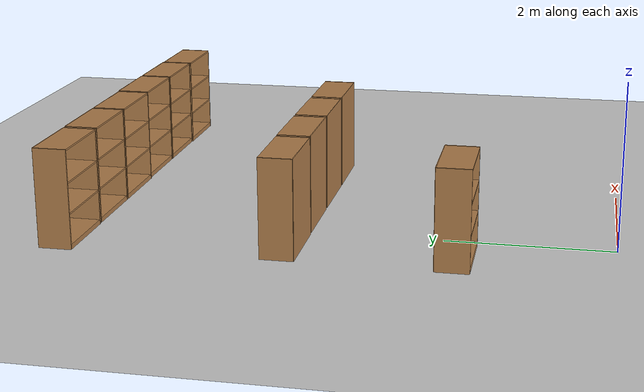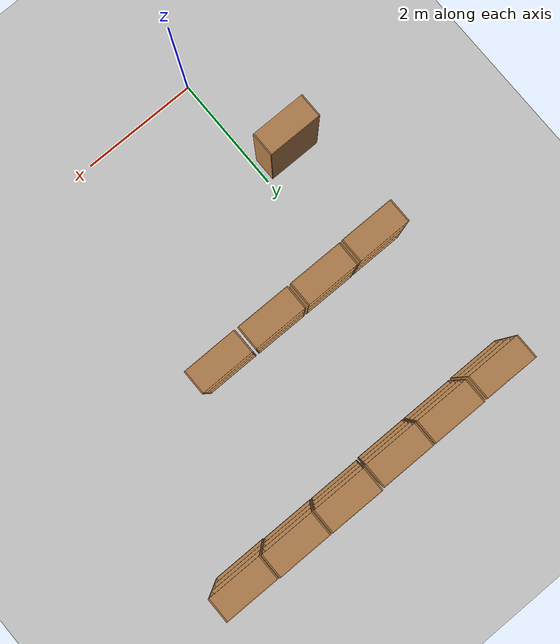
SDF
<sdf version="1.6">
 <world name="default">
  <model name="ground_plane">
   <static>1</static>
   <link name="link">
    <collision name="collision">
     <geometry><plane><normal>0 0 1</normal><size>100 100</size></plane></geometry>
     <surface><friction><ode><mu>100</mu><mu2>50</mu2></ode></friction></surface>
    </collision>
    <visual name="visual">
     <cast_shadows>0</cast_shadows>
     <geometry><plane><normal>0 0 1</normal><size>100 100</size></plane></geometry>
     <material>
      <script><uri>file://media/materials/scripts/gazebo.material</uri><name>Gazebo/Grey</name></script>
     </material>
    </visual>
   </link>
  </model>
  <model name="bookshelf">
   <static>1</static>
   <link name="link">
    <inertial><mass>1</mass></inertial>
    <collision name="back">
     <pose>0 0.005 0.6 0 -0 0</pose>
     <geometry><box><size>0.9 0.01 1.2</size></box></geometry>
    </collision>
    <visual name="visual1">
     <pose>0 0.005 0.6 0 -0 0</pose>
     <geometry><box><size>0.9 0.01 1.2</size></box></geometry>
     <material>
      <script><uri>file://media/materials/scripts/gazebo.material</uri><name>Gazebo/Wood</name></script>
     </material>
    </visual>
    <collision name="left_side">
     <pose>0.45 -0.195 0.6 0 -0 0</pose>
     <geometry><box><size>0.02 0.4 1.2</size></box></geometry>
    </collision>
    <visual name="visual2">
     <pose>0.45 -0.195 0.6 0 -0 0</pose>
     <geometry><box><size>0.02 0.4 1.2</size></box></geometry>
     <material>
      <script><uri>file://media/materials/scripts/gazebo.material</uri><name>Gazebo/Wood</name></script>
     </material>
    </visual>
    <collision name="right_side">
     <pose>-0.45 -0.195 0.6 0 -0 0</pose>
     <geometry><box><size>0.02 0.4 1.2</size></box></geometry>
    </collision>
    <visual name="visual3">
     <pose>-0.45 -0.195 0.6 0 -0 0</pose>
     <geometry><box><size>0.02 0.4 1.2</size></box></geometry>
     <material>
      <script><uri>file://media/materials/scripts/gazebo.material</uri><name>Gazebo/Wood</name></script>
     </material>
    </visual>
    <collision name="bottom">
     <pose>0 -0.195 0.03 0 -0 0</pose>
     <geometry><box><size>0.88 0.4 0.06</size></box></geometry>
    </collision>
    <visual name="visual4">
     <pose>0 -0.195 0.03 0 -0 0</pose>
     <geometry><box><size>0.88 0.4 0.06</size></box></geometry>
     <material>
      <script><uri>file://media/materials/scripts/gazebo.material</uri><name>Gazebo/Wood</name></script>
     </material>
    </visual>
    <collision name="top">
     <pose>0 -0.195 1.19 0 -0 0</pose>
     <geometry><box><size>0.88 0.4 0.02</size></box></geometry>
    </collision>
    <visual name="visual5">
     <pose>0 -0.195 1.19 0 -0 0</pose>
     <geometry><box><size>0.88 0.4 0.02</size></box></geometry>
     <material>
      <script><uri>file://media/materials/scripts/gazebo.material</uri><name>Gazebo/Wood</name></script>
     </material>
    </visual>
    <collision name="low_shelf">
     <pose>0 -0.195 0.43 0 -0 0</pose>
     <geometry><box><size>0.88 0.4 0.02</size></box></geometry>
    </collision>
    <visual name="visual6">
     <pose>0 -0.195 0.43 0 -0 0</pose>
     <geometry><box><size>0.88 0.4 0.02</size></box></geometry>
     <material>
      <script><uri>file://media/materials/scripts/gazebo.material</uri><name>Gazebo/Wood</name></script>
     </material>
    </visual>
    <collision name="high_shelf">
     <pose>0 -0.195 0.8 0 -0 0</pose>
     <geometry><box><size>0.88 0.4 0.02</size></box></geometry>
    </collision>
    <visual name="visual7">
     <pose>0 -0.195 0.8 0 -0 0</pose>
     <geometry><box><size>0.88 0.4 0.02</size></box></geometry>
     <material>
      <script><uri>file://media/materials/scripts/gazebo.material</uri><name>Gazebo/Wood</name></script>
     </material>
    </visual>
   </link>
   <pose>4.05709 6.59191 0 0 -0 0</pose>
  </model>
  <model name="bookshelf_0">
   <static>1</static>
   <link name="link">
    <inertial><mass>1</mass></inertial>
    <collision name="back">
     <pose>0 0.005 0.6 0 -0 0</pose>
     <geometry><box><size>0.9 0.01 1.2</size></box></geometry>
    </collision>
    <visual name="visual1">
     <pose>0 0.005 0.6 0 -0 0</pose>
     <geometry><box><size>0.9 0.01 1.2</size></box></geometry>
     <material>
      <script><uri>file://media/materials/scripts/gazebo.material</uri><name>Gazebo/Wood</name></script>
     </material>
    </visual>
    <collision name="left_side">
     <pose>0.45 -0.195 0.6 0 -0 0</pose>
     <geometry><box><size>0.02 0.4 1.2</size></box></geometry>
    </collision>
    <visual name="visual2">
     <pose>0.45 -0.195 0.6 0 -0 0</pose>
     <geometry><box><size>0.02 0.4 1.2</size></box></geometry>
     <material>
      <script><uri>file://media/materials/scripts/gazebo.material</uri><name>Gazebo/Wood</name></script>
     </material>
    </visual>
    <collision name="right_side">
     <pose>-0.45 -0.195 0.6 0 -0 0</pose>
     <geometry><box><size>0.02 0.4 1.2</size></box></geometry>
    </collision>
    <visual name="visual3">
     <pose>-0.45 -0.195 0.6 0 -0 0</pose>
     <geometry><box><size>0.02 0.4 1.2</size></box></geometry>
     <material>
      <script><uri>file://media/materials/scripts/gazebo.material</uri><name>Gazebo/Wood</name></script>
     </material>
    </visual>
    <collision name="bottom">
     <pose>0 -0.195 0.03 0 -0 0</pose>
     <geometry><box><size>0.88 0.4 0.06</size></box></geometry>
    </collision>
    <visual name="visual4">
     <pose>0 -0.195 0.03 0 -0 0</pose>
     <geometry><box><size>0.88 0.4 0.06</size></box></geometry>
     <material>
      <script><uri>file://media/materials/scripts/gazebo.material</uri><name>Gazebo/Wood</name></script>
     </material>
    </visual>
    <collision name="top">
     <pose>0 -0.195 1.19 0 -0 0</pose>
     <geometry><box><size>0.88 0.4 0.02</size></box></geometry>
    </collision>
    <visual name="visual5">
     <pose>0 -0.195 1.19 0 -0 0</pose>
     <geometry><box><size>0.88 0.4 0.02</size></box></geometry>
     <material>
      <script><uri>file://media/materials/scripts/gazebo.material</uri><name>Gazebo/Wood</name></script>
     </material>
    </visual>
    <collision name="low_shelf">
     <pose>0 -0.195 0.43 0 -0 0</pose>
     <geometry><box><size>0.88 0.4 0.02</size></box></geometry>
    </collision>
    <visual name="visual6">
     <pose>0 -0.195 0.43 0 -0 0</pose>
     <geometry><box><size>0.88 0.4 0.02</size></box></geometry>
     <material>
      <script><uri>file://media/materials/scripts/gazebo.material</uri><name>Gazebo/Wood</name></script>
     </material>
    </visual>
    <collision name="high_shelf">
     <pose>0 -0.195 0.8 0 -0 0</pose>
     <geometry><box><size>0.88 0.4 0.02</size></box></geometry>
    </collision>
    <visual name="visual7">
     <pose>0 -0.195 0.8 0 -0 0</pose>
     <geometry><box><size>0.88 0.4 0.02</size></box></geometry>
     <material>
      <script><uri>file://media/materials/scripts/gazebo.material</uri><name>Gazebo/Wood</name></script>
     </material>
    </visual>
   </link>
   <pose>3.12879 6.60173 0 0 -0 0</pose>
  </model>
  <model name="bookshelf_1">
   <static>1</static>
   <link name="link">
    <inertial><mass>1</mass></inertial>
    <collision name="back">
     <pose>0 0.005 0.6 0 -0 0</pose>
     <geometry><box><size>0.9 0.01 1.2</size></box></geometry>
    </collision>
    <visual name="visual1">
     <pose>0 0.005 0.6 0 -0 0</pose>
     <geometry><box><size>0.9 0.01 1.2</size></box></geometry>
     <material>
      <script><uri>file://media/materials/scripts/gazebo.material</uri><name>Gazebo/Wood</name></script>
     </material>
    </visual>
    <collision name="left_side">
     <pose>0.45 -0.195 0.6 0 -0 0</pose>
     <geometry><box><size>0.02 0.4 1.2</size></box></geometry>
    </collision>
    <visual name="visual2">
     <pose>0.45 -0.195 0.6 0 -0 0</pose>
     <geometry><box><size>0.02 0.4 1.2</size></box></geometry>
     <material>
      <script><uri>file://media/materials/scripts/gazebo.material</uri><name>Gazebo/Wood</name></script>
     </material>
    </visual>
    <collision name="right_side">
     <pose>-0.45 -0.195 0.6 0 -0 0</pose>
     <geometry><box><size>0.02 0.4 1.2</size></box></geometry>
    </collision>
    <visual name="visual3">
     <pose>-0.45 -0.195 0.6 0 -0 0</pose>
     <geometry><box><size>0.02 0.4 1.2</size></box></geometry>
     <material>
      <script><uri>file://media/materials/scripts/gazebo.material</uri><name>Gazebo/Wood</name></script>
     </material>
    </visual>
    <collision name="bottom">
     <pose>0 -0.195 0.03 0 -0 0</pose>
     <geometry><box><size>0.88 0.4 0.06</size></box></geometry>
    </collision>
    <visual name="visual4">
     <pose>0 -0.195 0.03 0 -0 0</pose>
     <geometry><box><size>0.88 0.4 0.06</size></box></geometry>
     <material>
      <script><uri>file://media/materials/scripts/gazebo.material</uri><name>Gazebo/Wood</name></script>
     </material>
    </visual>
    <collision name="top">
     <pose>0 -0.195 1.19 0 -0 0</pose>
     <geometry><box><size>0.88 0.4 0.02</size></box></geometry>
    </collision>
    <visual name="visual5">
     <pose>0 -0.195 1.19 0 -0 0</pose>
     <geometry><box><size>0.88 0.4 0.02</size></box></geometry>
     <material>
      <script><uri>file://media/materials/scripts/gazebo.material</uri><name>Gazebo/Wood</name></script>
     </material>
    </visual>
    <collision name="low_shelf">
     <pose>0 -0.195 0.43 0 -0 0</pose>
     <geometry><box><size>0.88 0.4 0.02</size></box></geometry>
    </collision>
    <visual name="visual6">
     <pose>0 -0.195 0.43 0 -0 0</pose>
     <geometry><box><size>0.88 0.4 0.02</size></box></geometry>
     <material>
      <script><uri>file://media/materials/scripts/gazebo.material</uri><name>Gazebo/Wood</name></script>
     </material>
    </visual>
    <collision name="high_shelf">
     <pose>0 -0.195 0.8 0 -0 0</pose>
     <geometry><box><size>0.88 0.4 0.02</size></box></geometry>
    </collision>
    <visual name="visual7">
     <pose>0 -0.195 0.8 0 -0 0</pose>
     <geometry><box><size>0.88 0.4 0.02</size></box></geometry>
     <material>
      <script><uri>file://media/materials/scripts/gazebo.material</uri><name>Gazebo/Wood</name></script>
     </material>
    </visual>
   </link>
   <pose>2.19452 6.60359 0 0 -0 0</pose>
  </model>
  <model name="bookshelf_2">
   <static>1</static>
   <link name="link">
    <inertial><mass>1</mass></inertial>
    <collision name="back">
     <pose>0 0.005 0.6 0 -0 0</pose>
     <geometry><box><size>0.9 0.01 1.2</size></box></geometry>
    </collision>
    <visual name="visual1">
     <pose>0 0.005 0.6 0 -0 0</pose>
     <geometry><box><size>0.9 0.01 1.2</size></box></geometry>
     <material>
      <script><uri>file://media/materials/scripts/gazebo.material</uri><name>Gazebo/Wood</name></script>
     </material>
    </visual>
    <collision name="left_side">
     <pose>0.45 -0.195 0.6 0 -0 0</pose>
     <geometry><box><size>0.02 0.4 1.2</size></box></geometry>
    </collision>
    <visual name="visual2">
     <pose>0.45 -0.195 0.6 0 -0 0</pose>
     <geometry><box><size>0.02 0.4 1.2</size></box></geometry>
     <material>
      <script><uri>file://media/materials/scripts/gazebo.material</uri><name>Gazebo/Wood</name></script>
     </material>
    </visual>
    <collision name="right_side">
     <pose>-0.45 -0.195 0.6 0 -0 0</pose>
     <geometry><box><size>0.02 0.4 1.2</size></box></geometry>
    </collision>
    <visual name="visual3">
     <pose>-0.45 -0.195 0.6 0 -0 0</pose>
     <geometry><box><size>0.02 0.4 1.2</size></box></geometry>
     <material>
      <script><uri>file://media/materials/scripts/gazebo.material</uri><name>Gazebo/Wood</name></script>
     </material>
    </visual>
    <collision name="bottom">
     <pose>0 -0.195 0.03 0 -0 0</pose>
     <geometry><box><size>0.88 0.4 0.06</size></box></geometry>
    </collision>
    <visual name="visual4">
     <pose>0 -0.195 0.03 0 -0 0</pose>
     <geometry><box><size>0.88 0.4 0.06</size></box></geometry>
     <material>
      <script><uri>file://media/materials/scripts/gazebo.material</uri><name>Gazebo/Wood</name></script>
     </material>
    </visual>
    <collision name="top">
     <pose>0 -0.195 1.19 0 -0 0</pose>
     <geometry><box><size>0.88 0.4 0.02</size></box></geometry>
    </collision>
    <visual name="visual5">
     <pose>0 -0.195 1.19 0 -0 0</pose>
     <geometry><box><size>0.88 0.4 0.02</size></box></geometry>
     <material>
      <script><uri>file://media/materials/scripts/gazebo.material</uri><name>Gazebo/Wood</name></script>
     </material>
    </visual>
    <collision name="low_shelf">
     <pose>0 -0.195 0.43 0 -0 0</pose>
     <geometry><box><size>0.88 0.4 0.02</size></box></geometry>
    </collision>
    <visual name="visual6">
     <pose>0 -0.195 0.43 0 -0 0</pose>
     <geometry><box><size>0.88 0.4 0.02</size></box></geometry>
     <material>
      <script><uri>file://media/materials/scripts/gazebo.material</uri><name>Gazebo/Wood</name></script>
     </material>
    </visual>
    <collision name="high_shelf">
     <pose>0 -0.195 0.8 0 -0 0</pose>
     <geometry><box><size>0.88 0.4 0.02</size></box></geometry>
    </collision>
    <visual name="visual7">
     <pose>0 -0.195 0.8 0 -0 0</pose>
     <geometry><box><size>0.88 0.4 0.02</size></box></geometry>
     <material>
      <script><uri>file://media/materials/scripts/gazebo.material</uri><name>Gazebo/Wood</name></script>
     </material>
    </visual>
   </link>
   <pose>1.25194 6.58848 0 0 -0 0</pose>
  </model>
  <model name="bookshelf_3">
   <static>1</static>
   <link name="link">
    <inertial><mass>1</mass></inertial>
    <collision name="back">
     <pose>0 0.005 0.6 0 -0 0</pose>
     <geometry><box><size>0.9 0.01 1.2</size></box></geometry>
    </collision>
    <visual name="visual1">
     <pose>0 0.005 0.6 0 -0 0</pose>
     <geometry><box><size>0.9 0.01 1.2</size></box></geometry>
     <material>
      <script><uri>file://media/materials/scripts/gazebo.material</uri><name>Gazebo/Wood</name></script>
     </material>
    </visual>
    <collision name="left_side">
     <pose>0.45 -0.195 0.6 0 -0 0</pose>
     <geometry><box><size>0.02 0.4 1.2</size></box></geometry>
    </collision>
    <visual name="visual2">
     <pose>0.45 -0.195 0.6 0 -0 0</pose>
     <geometry><box><size>0.02 0.4 1.2</size></box></geometry>
     <material>
      <script><uri>file://media/materials/scripts/gazebo.material</uri><name>Gazebo/Wood</name></script>
     </material>
    </visual>
    <collision name="right_side">
     <pose>-0.45 -0.195 0.6 0 -0 0</pose>
     <geometry><box><size>0.02 0.4 1.2</size></box></geometry>
    </collision>
    <visual name="visual3">
     <pose>-0.45 -0.195 0.6 0 -0 0</pose>
     <geometry><box><size>0.02 0.4 1.2</size></box></geometry>
     <material>
      <script><uri>file://media/materials/scripts/gazebo.material</uri><name>Gazebo/Wood</name></script>
     </material>
    </visual>
    <collision name="bottom">
     <pose>0 -0.195 0.03 0 -0 0</pose>
     <geometry><box><size>0.88 0.4 0.06</size></box></geometry>
    </collision>
    <visual name="visual4">
     <pose>0 -0.195 0.03 0 -0 0</pose>
     <geometry><box><size>0.88 0.4 0.06</size></box></geometry>
     <material>
      <script><uri>file://media/materials/scripts/gazebo.material</uri><name>Gazebo/Wood</name></script>
     </material>
    </visual>
    <collision name="top">
     <pose>0 -0.195 1.19 0 -0 0</pose>
     <geometry><box><size>0.88 0.4 0.02</size></box></geometry>
    </collision>
    <visual name="visual5">
     <pose>0 -0.195 1.19 0 -0 0</pose>
     <geometry><box><size>0.88 0.4 0.02</size></box></geometry>
     <material>
      <script><uri>file://media/materials/scripts/gazebo.material</uri><name>Gazebo/Wood</name></script>
     </material>
    </visual>
    <collision name="low_shelf">
     <pose>0 -0.195 0.43 0 -0 0</pose>
     <geometry><box><size>0.88 0.4 0.02</size></box></geometry>
    </collision>
    <visual name="visual6">
     <pose>0 -0.195 0.43 0 -0 0</pose>
     <geometry><box><size>0.88 0.4 0.02</size></box></geometry>
     <material>
      <script><uri>file://media/materials/scripts/gazebo.material</uri><name>Gazebo/Wood</name></script>
     </material>
    </visual>
    <collision name="high_shelf">
     <pose>0 -0.195 0.8 0 -0 0</pose>
     <geometry><box><size>0.88 0.4 0.02</size></box></geometry>
    </collision>
    <visual name="visual7">
     <pose>0 -0.195 0.8 0 -0 0</pose>
     <geometry><box><size>0.88 0.4 0.02</size></box></geometry>
     <material>
      <script><uri>file://media/materials/scripts/gazebo.material</uri><name>Gazebo/Wood</name></script>
     </material>
    </visual>
   </link>
   <pose>0.319104 6.58896 0 0 -0 0</pose>
  </model>
  <model name="bookshelf_4">
   <static>1</static>
   <link name="link">
    <inertial><mass>1</mass></inertial>
    <collision name="back">
     <pose>0 0.005 0.6 0 -0 0</pose>
     <geometry><box><size>0.9 0.01 1.2</size></box></geometry>
    </collision>
    <visual name="visual1">
     <pose>0 0.005 0.6 0 -0 0</pose>
     <geometry><box><size>0.9 0.01 1.2</size></box></geometry>
     <material>
      <script><uri>file://media/materials/scripts/gazebo.material</uri><name>Gazebo/Wood</name></script>
     </material>
    </visual>
    <collision name="left_side">
     <pose>0.45 -0.195 0.6 0 -0 0</pose>
     <geometry><box><size>0.02 0.4 1.2</size></box></geometry>
    </collision>
    <visual name="visual2">
     <pose>0.45 -0.195 0.6 0 -0 0</pose>
     <geometry><box><size>0.02 0.4 1.2</size></box></geometry>
     <material>
      <script><uri>file://media/materials/scripts/gazebo.material</uri><name>Gazebo/Wood</name></script>
     </material>
    </visual>
    <collision name="right_side">
     <pose>-0.45 -0.195 0.6 0 -0 0</pose>
     <geometry><box><size>0.02 0.4 1.2</size></box></geometry>
    </collision>
    <visual name="visual3">
     <pose>-0.45 -0.195 0.6 0 -0 0</pose>
     <geometry><box><size>0.02 0.4 1.2</size></box></geometry>
     <material>
      <script><uri>file://media/materials/scripts/gazebo.material</uri><name>Gazebo/Wood</name></script>
     </material>
    </visual>
    <collision name="bottom">
     <pose>0 -0.195 0.03 0 -0 0</pose>
     <geometry><box><size>0.88 0.4 0.06</size></box></geometry>
    </collision>
    <visual name="visual4">
     <pose>0 -0.195 0.03 0 -0 0</pose>
     <geometry><box><size>0.88 0.4 0.06</size></box></geometry>
     <material>
      <script><uri>file://media/materials/scripts/gazebo.material</uri><name>Gazebo/Wood</name></script>
     </material>
    </visual>
    <collision name="top">
     <pose>0 -0.195 1.19 0 -0 0</pose>
     <geometry><box><size>0.88 0.4 0.02</size></box></geometry>
    </collision>
    <visual name="visual5">
     <pose>0 -0.195 1.19 0 -0 0</pose>
     <geometry><box><size>0.88 0.4 0.02</size></box></geometry>
     <material>
      <script><uri>file://media/materials/scripts/gazebo.material</uri><name>Gazebo/Wood</name></script>
     </material>
    </visual>
    <collision name="low_shelf">
     <pose>0 -0.195 0.43 0 -0 0</pose>
     <geometry><box><size>0.88 0.4 0.02</size></box></geometry>
    </collision>
    <visual name="visual6">
     <pose>0 -0.195 0.43 0 -0 0</pose>
     <geometry><box><size>0.88 0.4 0.02</size></box></geometry>
     <material>
      <script><uri>file://media/materials/scripts/gazebo.material</uri><name>Gazebo/Wood</name></script>
     </material>
    </visual>
    <collision name="high_shelf">
     <pose>0 -0.195 0.8 0 -0 0</pose>
     <geometry><box><size>0.88 0.4 0.02</size></box></geometry>
    </collision>
    <visual name="visual7">
     <pose>0 -0.195 0.8 0 -0 0</pose>
     <geometry><box><size>0.88 0.4 0.02</size></box></geometry>
     <material>
      <script><uri>file://media/materials/scripts/gazebo.material</uri><name>Gazebo/Wood</name></script>
     </material>
    </visual>
   </link>
   <pose>-0.528232 3.59496 0 0 0 -3.13715</pose>
  </model>
  <model name="bookshelf_5">
   <static>1</static>
   <link name="link">
    <inertial><mass>1</mass></inertial>
    <collision name="back">
     <pose>0 0.005 0.6 0 -0 0</pose>
     <geometry><box><size>0.9 0.01 1.2</size></box></geometry>
    </collision>
    <visual name="visual1">
     <pose>0 0.005 0.6 0 -0 0</pose>
     <geometry><box><size>0.9 0.01 1.2</size></box></geometry>
     <material>
      <script><uri>file://media/materials/scripts/gazebo.material</uri><name>Gazebo/Wood</name></script>
     </material>
    </visual>
    <collision name="left_side">
     <pose>0.45 -0.195 0.6 0 -0 0</pose>
     <geometry><box><size>0.02 0.4 1.2</size></box></geometry>
    </collision>
    <visual name="visual2">
     <pose>0.45 -0.195 0.6 0 -0 0</pose>
     <geometry><box><size>0.02 0.4 1.2</size></box></geometry>
     <material>
      <script><uri>file://media/materials/scripts/gazebo.material</uri><name>Gazebo/Wood</name></script>
     </material>
    </visual>
    <collision name="right_side">
     <pose>-0.45 -0.195 0.6 0 -0 0</pose>
     <geometry><box><size>0.02 0.4 1.2</size></box></geometry>
    </collision>
    <visual name="visual3">
     <pose>-0.45 -0.195 0.6 0 -0 0</pose>
     <geometry><box><size>0.02 0.4 1.2</size></box></geometry>
     <material>
      <script><uri>file://media/materials/scripts/gazebo.material</uri><name>Gazebo/Wood</name></script>
     </material>
    </visual>
    <collision name="bottom">
     <pose>0 -0.195 0.03 0 -0 0</pose>
     <geometry><box><size>0.88 0.4 0.06</size></box></geometry>
    </collision>
    <visual name="visual4">
     <pose>0 -0.195 0.03 0 -0 0</pose>
     <geometry><box><size>0.88 0.4 0.06</size></box></geometry>
     <material>
      <script><uri>file://media/materials/scripts/gazebo.material</uri><name>Gazebo/Wood</name></script>
     </material>
    </visual>
    <collision name="top">
     <pose>0 -0.195 1.19 0 -0 0</pose>
     <geometry><box><size>0.88 0.4 0.02</size></box></geometry>
    </collision>
    <visual name="visual5">
     <pose>0 -0.195 1.19 0 -0 0</pose>
     <geometry><box><size>0.88 0.4 0.02</size></box></geometry>
     <material>
      <script><uri>file://media/materials/scripts/gazebo.material</uri><name>Gazebo/Wood</name></script>
     </material>
    </visual>
    <collision name="low_shelf">
     <pose>0 -0.195 0.43 0 -0 0</pose>
     <geometry><box><size>0.88 0.4 0.02</size></box></geometry>
    </collision>
    <visual name="visual6">
     <pose>0 -0.195 0.43 0 -0 0</pose>
     <geometry><box><size>0.88 0.4 0.02</size></box></geometry>
     <material>
      <script><uri>file://media/materials/scripts/gazebo.material</uri><name>Gazebo/Wood</name></script>
     </material>
    </visual>
    <collision name="high_shelf">
     <pose>0 -0.195 0.8 0 -0 0</pose>
     <geometry><box><size>0.88 0.4 0.02</size></box></geometry>
    </collision>
    <visual name="visual7">
     <pose>0 -0.195 0.8 0 -0 0</pose>
     <geometry><box><size>0.88 0.4 0.02</size></box></geometry>
     <material>
      <script><uri>file://media/materials/scripts/gazebo.material</uri><name>Gazebo/Wood</name></script>
     </material>
    </visual>
   </link>
   <pose>0.427849 3.60204 0 0 0 -3.14074</pose>
  </model>
  <model name="bookshelf_6">
   <static>1</static>
   <link name="link">
    <inertial><mass>1</mass></inertial>
    <collision name="back">
     <pose>0 0.005 0.6 0 -0 0</pose>
     <geometry><box><size>0.9 0.01 1.2</size></box></geometry>
    </collision>
    <visual name="visual1">
     <pose>0 0.005 0.6 0 -0 0</pose>
     <geometry><box><size>0.9 0.01 1.2</size></box></geometry>
     <material>
      <script><uri>file://media/materials/scripts/gazebo.material</uri><name>Gazebo/Wood</name></script>
     </material>
    </visual>
    <collision name="left_side">
     <pose>0.45 -0.195 0.6 0 -0 0</pose>
     <geometry><box><size>0.02 0.4 1.2</size></box></geometry>
    </collision>
    <visual name="visual2">
     <pose>0.45 -0.195 0.6 0 -0 0</pose>
     <geometry><box><size>0.02 0.4 1.2</size></box></geometry>
     <material>
      <script><uri>file://media/materials/scripts/gazebo.material</uri><name>Gazebo/Wood</name></script>
     </material>
    </visual>
    <collision name="right_side">
     <pose>-0.45 -0.195 0.6 0 -0 0</pose>
     <geometry><box><size>0.02 0.4 1.2</size></box></geometry>
    </collision>
    <visual name="visual3">
     <pose>-0.45 -0.195 0.6 0 -0 0</pose>
     <geometry><box><size>0.02 0.4 1.2</size></box></geometry>
     <material>
      <script><uri>file://media/materials/scripts/gazebo.material</uri><name>Gazebo/Wood</name></script>
     </material>
    </visual>
    <collision name="bottom">
     <pose>0 -0.195 0.03 0 -0 0</pose>
     <geometry><box><size>0.88 0.4 0.06</size></box></geometry>
    </collision>
    <visual name="visual4">
     <pose>0 -0.195 0.03 0 -0 0</pose>
     <geometry><box><size>0.88 0.4 0.06</size></box></geometry>
     <material>
      <script><uri>file://media/materials/scripts/gazebo.material</uri><name>Gazebo/Wood</name></script>
     </material>
    </visual>
    <collision name="top">
     <pose>0 -0.195 1.19 0 -0 0</pose>
     <geometry><box><size>0.88 0.4 0.02</size></box></geometry>
    </collision>
    <visual name="visual5">
     <pose>0 -0.195 1.19 0 -0 0</pose>
     <geometry><box><size>0.88 0.4 0.02</size></box></geometry>
     <material>
      <script><uri>file://media/materials/scripts/gazebo.material</uri><name>Gazebo/Wood</name></script>
     </material>
    </visual>
    <collision name="low_shelf">
     <pose>0 -0.195 0.43 0 -0 0</pose>
     <geometry><box><size>0.88 0.4 0.02</size></box></geometry>
    </collision>
    <visual name="visual6">
     <pose>0 -0.195 0.43 0 -0 0</pose>
     <geometry><box><size>0.88 0.4 0.02</size></box></geometry>
     <material>
      <script><uri>file://media/materials/scripts/gazebo.material</uri><name>Gazebo/Wood</name></script>
     </material>
    </visual>
    <collision name="high_shelf">
     <pose>0 -0.195 0.8 0 -0 0</pose>
     <geometry><box><size>0.88 0.4 0.02</size></box></geometry>
    </collision>
    <visual name="visual7">
     <pose>0 -0.195 0.8 0 -0 0</pose>
     <geometry><box><size>0.88 0.4 0.02</size></box></geometry>
     <material>
      <script><uri>file://media/materials/scripts/gazebo.material</uri><name>Gazebo/Wood</name></script>
     </material>
    </visual>
   </link>
   <pose>1.38749 3.60149 0 0 -0 3.14021</pose>
  </model>
  <model name="bookshelf_7">
   <static>1</static>
   <link name="link">
    <inertial><mass>1</mass></inertial>
    <collision name="back">
     <pose>0 0.005 0.6 0 -0 0</pose>
     <geometry><box><size>0.9 0.01 1.2</size></box></geometry>
    </collision>
    <visual name="visual1">
     <pose>0 0.005 0.6 0 -0 0</pose>
     <geometry><box><size>0.9 0.01 1.2</size></box></geometry>
     <material>
      <script><uri>file://media/materials/scripts/gazebo.material</uri><name>Gazebo/Wood</name></script>
     </material>
    </visual>
    <collision name="left_side">
     <pose>0.45 -0.195 0.6 0 -0 0</pose>
     <geometry><box><size>0.02 0.4 1.2</size></box></geometry>
    </collision>
    <visual name="visual2">
     <pose>0.45 -0.195 0.6 0 -0 0</pose>
     <geometry><box><size>0.02 0.4 1.2</size></box></geometry>
     <material>
      <script><uri>file://media/materials/scripts/gazebo.material</uri><name>Gazebo/Wood</name></script>
     </material>
    </visual>
    <collision name="right_side">
     <pose>-0.45 -0.195 0.6 0 -0 0</pose>
     <geometry><box><size>0.02 0.4 1.2</size></box></geometry>
    </collision>
    <visual name="visual3">
     <pose>-0.45 -0.195 0.6 0 -0 0</pose>
     <geometry><box><size>0.02 0.4 1.2</size></box></geometry>
     <material>
      <script><uri>file://media/materials/scripts/gazebo.material</uri><name>Gazebo/Wood</name></script>
     </material>
    </visual>
    <collision name="bottom">
     <pose>0 -0.195 0.03 0 -0 0</pose>
     <geometry><box><size>0.88 0.4 0.06</size></box></geometry>
    </collision>
    <visual name="visual4">
     <pose>0 -0.195 0.03 0 -0 0</pose>
     <geometry><box><size>0.88 0.4 0.06</size></box></geometry>
     <material>
      <script><uri>file://media/materials/scripts/gazebo.material</uri><name>Gazebo/Wood</name></script>
     </material>
    </visual>
    <collision name="top">
     <pose>0 -0.195 1.19 0 -0 0</pose>
     <geometry><box><size>0.88 0.4 0.02</size></box></geometry>
    </collision>
    <visual name="visual5">
     <pose>0 -0.195 1.19 0 -0 0</pose>
     <geometry><box><size>0.88 0.4 0.02</size></box></geometry>
     <material>
      <script><uri>file://media/materials/scripts/gazebo.material</uri><name>Gazebo/Wood</name></script>
     </material>
    </visual>
    <collision name="low_shelf">
     <pose>0 -0.195 0.43 0 -0 0</pose>
     <geometry><box><size>0.88 0.4 0.02</size></box></geometry>
    </collision>
    <visual name="visual6">
     <pose>0 -0.195 0.43 0 -0 0</pose>
     <geometry><box><size>0.88 0.4 0.02</size></box></geometry>
     <material>
      <script><uri>file://media/materials/scripts/gazebo.material</uri><name>Gazebo/Wood</name></script>
     </material>
    </visual>
    <collision name="high_shelf">
     <pose>0 -0.195 0.8 0 -0 0</pose>
     <geometry><box><size>0.88 0.4 0.02</size></box></geometry>
    </collision>
    <visual name="visual7">
     <pose>0 -0.195 0.8 0 -0 0</pose>
     <geometry><box><size>0.88 0.4 0.02</size></box></geometry>
     <material>
      <script><uri>file://media/materials/scripts/gazebo.material</uri><name>Gazebo/Wood</name></script>
     </material>
    </visual>
   </link>
   <pose>2.35348 3.60082 0 0 0 -3.1389</pose>
  </model>
  <model name="bookshelf_3_clone">
   <static>1</static>
   <link name="link">
    <inertial><mass>1</mass></inertial>
    <collision name="back">
     <pose>0 0.005 0.6 0 -0 0</pose>
     <geometry><box><size>0.9 0.01 1.2</size></box></geometry>
    </collision>
    <visual name="visual1">
     <pose>0 0.005 0.6 0 -0 0</pose>
     <geometry><box><size>0.9 0.01 1.2</size></box></geometry>
     <material>
      <script><uri>file://media/materials/scripts/gazebo.material</uri><name>Gazebo/Wood</name></script>
     </material>
    </visual>
    <collision name="left_side">
     <pose>0.45 -0.195 0.6 0 -0 0</pose>
     <geometry><box><size>0.02 0.4 1.2</size></box></geometry>
    </collision>
    <visual name="visual2">
     <pose>0.45 -0.195 0.6 0 -0 0</pose>
     <geometry><box><size>0.02 0.4 1.2</size></box></geometry>
     <material>
      <script><uri>file://media/materials/scripts/gazebo.material</uri><name>Gazebo/Wood</name></script>
     </material>
    </visual>
    <collision name="right_side">
     <pose>-0.45 -0.195 0.6 0 -0 0</pose>
     <geometry><box><size>0.02 0.4 1.2</size></box></geometry>
    </collision>
    <visual name="visual3">
     <pose>-0.45 -0.195 0.6 0 -0 0</pose>
     <geometry><box><size>0.02 0.4 1.2</size></box></geometry>
     <material>
      <script><uri>file://media/materials/scripts/gazebo.material</uri><name>Gazebo/Wood</name></script>
     </material>
    </visual>
    <collision name="bottom">
     <pose>0 -0.195 0.03 0 -0 0</pose>
     <geometry><box><size>0.88 0.4 0.06</size></box></geometry>
    </collision>
    <visual name="visual4">
     <pose>0 -0.195 0.03 0 -0 0</pose>
     <geometry><box><size>0.88 0.4 0.06</size></box></geometry>
     <material>
      <script><uri>file://media/materials/scripts/gazebo.material</uri><name>Gazebo/Wood</name></script>
     </material>
    </visual>
    <collision name="top">
     <pose>0 -0.195 1.19 0 -0 0</pose>
     <geometry><box><size>0.88 0.4 0.02</size></box></geometry>
    </collision>
    <visual name="visual5">
     <pose>0 -0.195 1.19 0 -0 0</pose>
     <geometry><box><size>0.88 0.4 0.02</size></box></geometry>
     <material>
      <script><uri>file://media/materials/scripts/gazebo.material</uri><name>Gazebo/Wood</name></script>
     </material>
    </visual>
    <collision name="low_shelf">
     <pose>0 -0.195 0.43 0 -0 0</pose>
     <geometry><box><size>0.88 0.4 0.02</size></box></geometry>
    </collision>
    <visual name="visual6">
     <pose>0 -0.195 0.43 0 -0 0</pose>
     <geometry><box><size>0.88 0.4 0.02</size></box></geometry>
     <material>
      <script><uri>file://media/materials/scripts/gazebo.material</uri><name>Gazebo/Wood</name></script>
     </material>
    </visual>
    <collision name="high_shelf">
     <pose>0 -0.195 0.8 0 -0 0</pose>
     <geometry><box><size>0.88 0.4 0.02</size></box></geometry>
    </collision>
    <visual name="visual7">
     <pose>0 -0.195 0.8 0 -0 0</pose>
     <geometry><box><size>0.88 0.4 0.02</size></box></geometry>
     <material>
      <script><uri>file://media/materials/scripts/gazebo.material</uri><name>Gazebo/Wood</name></script>
     </material>
    </visual>
   </link>
   <pose>-0.546107 1.99716 0 0 -0 0</pose>
  </model>
  <model name="bookshelf_3_clone_11">
   <static>1</static>
   <link name="link">
    <inertial><mass>1</mass></inertial>
    <collision name="back">
     <pose>0 0.005 0.6 0 -0 0</pose>
     <geometry><box><size>0.9 0.01 1.2</size></box></geometry>
    </collision>
    <visual name="visual1">
     <pose>0 0.005 0.6 0 -0 0</pose>
     <geometry><box><size>0.9 0.01 1.2</size></box></geometry>
     <material>
      <script><uri>file://media/materials/scripts/gazebo.material</uri><name>Gazebo/Wood</name></script>
     </material>
    </visual>
    <collision name="left_side">
     <pose>0.45 -0.195 0.6 0 -0 0</pose>
     <geometry><box><size>0.02 0.4 1.2</size></box></geometry>
    </collision>
    <visual name="visual2">
     <pose>0.45 -0.195 0.6 0 -0 0</pose>
     <geometry><box><size>0.02 0.4 1.2</size></box></geometry>
     <material>
      <script><uri>file://media/materials/scripts/gazebo.material</uri><name>Gazebo/Wood</name></script>
     </material>
    </visual>
    <collision name="right_side">
     <pose>-0.45 -0.195 0.6 0 -0 0</pose>
     <geometry><box><size>0.02 0.4 1.2</size></box></geometry>
    </collision>
    <visual name="visual3">
     <pose>-0.45 -0.195 0.6 0 -0 0</pose>
     <geometry><box><size>0.02 0.4 1.2</size></box></geometry>
     <material>
      <script><uri>file://media/materials/scripts/gazebo.material</uri><name>Gazebo/Wood</name></script>
     </material>
    </visual>
    <collision name="bottom">
     <pose>0 -0.195 0.03 0 -0 0</pose>
     <geometry><box><size>0.88 0.4 0.06</size></box></geometry>
    </collision>
    <visual name="visual4">
     <pose>0 -0.195 0.03 0 -0 0</pose>
     <geometry><box><size>0.88 0.4 0.06</size></box></geometry>
     <material>
      <script><uri>file://media/materials/scripts/gazebo.material</uri><name>Gazebo/Wood</name></script>
     </material>
    </visual>
    <collision name="top">
     <pose>0 -0.195 1.19 0 -0 0</pose>
     <geometry><box><size>0.88 0.4 0.02</size></box></geometry>
    </collision>
    <visual name="visual5">
     <pose>0 -0.195 1.19 0 -0 0</pose>
     <geometry><box><size>0.88 0.4 0.02</size></box></geometry>
     <material>
      <script><uri>file://media/materials/scripts/gazebo.material</uri><name>Gazebo/Wood</name></script>
     </material>
    </visual>
    <collision name="low_shelf">
     <pose>0 -0.195 0.43 0 -0 0</pose>
     <geometry><box><size>0.88 0.4 0.02</size></box></geometry>
    </collision>
    <visual name="visual6">
     <pose>0 -0.195 0.43 0 -0 0</pose>
     <geometry><box><size>0.88 0.4 0.02</size></box></geometry>
     <material>
      <script><uri>file://media/materials/scripts/gazebo.material</uri><name>Gazebo/Wood</name></script>
     </material>
    </visual>
    <collision name="high_shelf">
     <pose>0 -0.195 0.8 0 -0 0</pose>
     <geometry><box><size>0.88 0.4 0.02</size></box></geometry>
    </collision>
    <visual name="visual7">
     <pose>0 -0.195 0.8 0 -0 0</pose>
     <geometry><box><size>0.88 0.4 0.02</size></box></geometry>
     <material>
      <script><uri>file://media/materials/scripts/gazebo.material</uri><name>Gazebo/Wood</name></script>
     </material>
    </visual>
   </link>
   <pose>-0.635462 6.58297 0 0 -0 0</pose>
  </model>
 </world>
</sdf>
